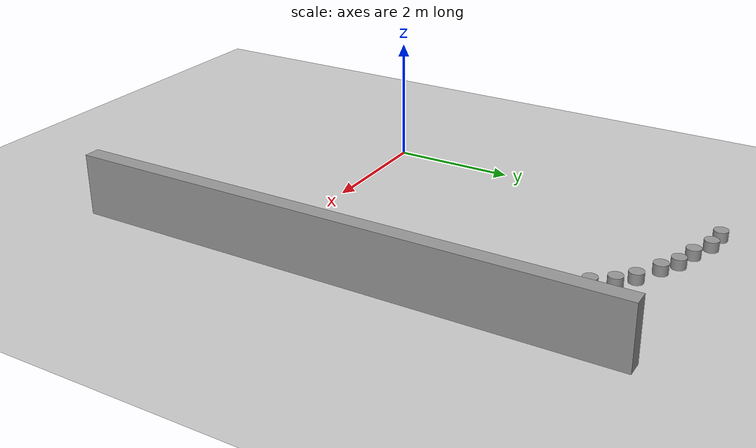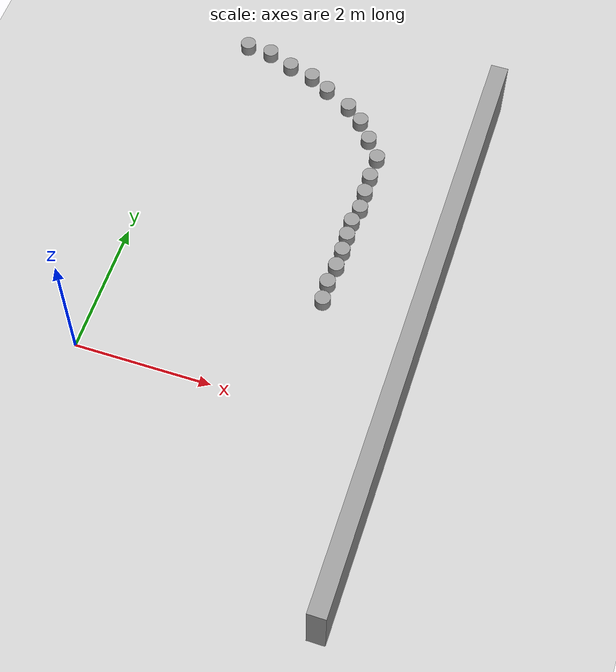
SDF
<sdf version="1.6">
 <world name="default">
  <model name="ground_plane">
   <static>1</static>
   <link name="link">
    <collision name="collision">
     <geometry><plane><normal>0 0 1</normal><size>100 100</size></plane></geometry>
     <surface>
      <contact><collide_bitmask>65535</collide_bitmask></contact>
      <friction><ode><mu>100</mu><mu2>50</mu2></ode></friction>
     </surface>
    </collision>
    <visual name="visual">
     <cast_shadows>0</cast_shadows>
     <geometry><plane><normal>0 0 1</normal><size>100 100</size></plane></geometry>
     <material>
      <script><uri>file://media/materials/scripts/gazebo.material</uri><name>Gazebo/Grey</name></script>
     </material>
    </visual>
   </link>
  </model>
  <model name="wall_1">
   <static>1</static>
   <pose>4.47107 1.4204 0.5 0 -0 0</pose>
   <link name="link">
    <inertial>
     <mass>1</mass>
     <inertia>
      <ixx>0.166667</ixx>
      <ixy>0</ixy>
      <ixz>0</ixz>
      <iyy>0.166667</iyy>
      <iyz>0</iyz>
      <izz>0.166667</izz>
     </inertia>
    </inertial>
    <collision name="collision"><geometry><box><size>0.255907 8.84306 1</size></box></geometry></collision>
    <visual name="visual">
     <geometry><box><size>0.255907 8.84306 1</size></box></geometry>
     <material>
      <script><name>Gazebo/Grey</name><uri>file://media/materials/scripts/gazebo.material</uri></script>
     </material>
    </visual>
   </link>
  </model>
  <model name="pillar_clone_16">
   <link name="link_0">
    <inertial>
     <mass>0.0172437</mass>
     <inertia>
      <ixx>0.000207925</ixx>
      <ixy>0</ixy>
      <ixz>0</ixz>
      <iyy>0.000207925</iyy>
      <iyz>0</iyz>
      <izz>0.000114861</izz>
     </inertia>
    </inertial>
    <pose>2e-06 -0 0 0 -0 0</pose>
    <visual name="visual">
     <geometry><cylinder><radius>0.115422</radius><length>0.32362</length></cylinder></geometry>
     <material>
      <lighting>1</lighting>
      <script><uri>file://media/materials/scripts/gazebo.material</uri><name>Gazebo/Grey</name></script>
      <shader type="vertex"><normal_map>__default__</normal_map></shader>
     </material>
    </visual>
    <collision name="collision">
     <geometry><cylinder><radius>0.115422</radius><length>0.32362</length></cylinder></geometry>
     <surface>
      <friction>
       <ode><mu>1</mu><mu2>1</mu2><fdir1>0 0 0</fdir1><slip1>0</slip1><slip2>0</slip2></ode>
       <torsional>
        <coefficient>1</coefficient>
        <patch_radius>0</patch_radius>
        <surface_radius>0</surface_radius>
        <use_patch_radius>1</use_patch_radius>
        <ode><slip>0</slip></ode>
       </torsional>
      </friction>
      <bounce><restitution_coefficient>0</restitution_coefficient><threshold>1e+06</threshold></bounce>
      <contact>
       <collide_without_contact>0</collide_without_contact>
       <collide_without_contact_bitmask>1</collide_without_contact_bitmask>
       <collide_bitmask>1</collide_bitmask>
       <ode>
        <soft_cfm>0</soft_cfm>
        <soft_erp>0.2</soft_erp>
        <kp>1e+13</kp>
        <kd>1</kd>
        <max_vel>0.01</max_vel>
        <min_depth>0</min_depth>
       </ode>
       <bullet>
        <split_impulse>1</split_impulse>
        <split_impulse_penetration_threshold>-0.01</split_impulse_penetration_threshold>
        <soft_cfm>0</soft_cfm>
        <soft_erp>0.2</soft_erp>
        <kp>1e+13</kp>
        <kd>1</kd>
       </bullet>
      </contact>
     </surface>
    </collision>
   </link>
   <static>1</static>
   <pose>3.07065 3.97139 0 0 -0 0</pose>
  </model>
  <model name="pillar_clone_17">
   <link name="link_0">
    <inertial>
     <mass>0.0172437</mass>
     <inertia>
      <ixx>0.000207925</ixx>
      <ixy>0</ixy>
      <ixz>0</ixz>
      <iyy>0.000207925</iyy>
      <iyz>0</iyz>
      <izz>0.000114861</izz>
     </inertia>
    </inertial>
    <pose>2e-06 -0 0 0 -0 0</pose>
    <visual name="visual">
     <geometry><cylinder><radius>0.115422</radius><length>0.32362</length></cylinder></geometry>
     <material>
      <lighting>1</lighting>
      <script><uri>file://media/materials/scripts/gazebo.material</uri><name>Gazebo/Grey</name></script>
      <shader type="vertex"><normal_map>__default__</normal_map></shader>
     </material>
    </visual>
    <collision name="collision">
     <geometry><cylinder><radius>0.115422</radius><length>0.32362</length></cylinder></geometry>
     <surface>
      <friction>
       <ode><mu>1</mu><mu2>1</mu2><fdir1>0 0 0</fdir1><slip1>0</slip1><slip2>0</slip2></ode>
       <torsional>
        <coefficient>1</coefficient>
        <patch_radius>0</patch_radius>
        <surface_radius>0</surface_radius>
        <use_patch_radius>1</use_patch_radius>
        <ode><slip>0</slip></ode>
       </torsional>
      </friction>
      <bounce><restitution_coefficient>0</restitution_coefficient><threshold>1e+06</threshold></bounce>
      <contact>
       <collide_without_contact>0</collide_without_contact>
       <collide_without_contact_bitmask>1</collide_without_contact_bitmask>
       <collide_bitmask>1</collide_bitmask>
       <ode>
        <soft_cfm>0</soft_cfm>
        <soft_erp>0.2</soft_erp>
        <kp>1e+13</kp>
        <kd>1</kd>
        <max_vel>0.01</max_vel>
        <min_depth>0</min_depth>
       </ode>
       <bullet>
        <split_impulse>1</split_impulse>
        <split_impulse_penetration_threshold>-0.01</split_impulse_penetration_threshold>
        <soft_cfm>0</soft_cfm>
        <soft_erp>0.2</soft_erp>
        <kp>1e+13</kp>
        <kd>1</kd>
       </bullet>
      </contact>
     </surface>
    </collision>
   </link>
   <static>1</static>
   <pose>3.08112 3.67254 0 0 -0 0</pose>
  </model>
  <model name="pillar_clone_18">
   <link name="link_0">
    <inertial>
     <mass>0.0172437</mass>
     <inertia>
      <ixx>0.000207925</ixx>
      <ixy>0</ixy>
      <ixz>0</ixz>
      <iyy>0.000207925</iyy>
      <iyz>0</iyz>
      <izz>0.000114861</izz>
     </inertia>
    </inertial>
    <pose>2e-06 -0 0 0 -0 0</pose>
    <visual name="visual">
     <geometry><cylinder><radius>0.115422</radius><length>0.32362</length></cylinder></geometry>
     <material>
      <lighting>1</lighting>
      <script><uri>file://media/materials/scripts/gazebo.material</uri><name>Gazebo/Grey</name></script>
      <shader type="vertex"><normal_map>__default__</normal_map></shader>
     </material>
    </visual>
    <collision name="collision">
     <geometry><cylinder><radius>0.115422</radius><length>0.32362</length></cylinder></geometry>
     <surface>
      <friction>
       <ode><mu>1</mu><mu2>1</mu2><fdir1>0 0 0</fdir1><slip1>0</slip1><slip2>0</slip2></ode>
       <torsional>
        <coefficient>1</coefficient>
        <patch_radius>0</patch_radius>
        <surface_radius>0</surface_radius>
        <use_patch_radius>1</use_patch_radius>
        <ode><slip>0</slip></ode>
       </torsional>
      </friction>
      <bounce><restitution_coefficient>0</restitution_coefficient><threshold>1e+06</threshold></bounce>
      <contact>
       <collide_without_contact>0</collide_without_contact>
       <collide_without_contact_bitmask>1</collide_without_contact_bitmask>
       <collide_bitmask>1</collide_bitmask>
       <ode>
        <soft_cfm>0</soft_cfm>
        <soft_erp>0.2</soft_erp>
        <kp>1e+13</kp>
        <kd>1</kd>
        <max_vel>0.01</max_vel>
        <min_depth>0</min_depth>
       </ode>
       <bullet>
        <split_impulse>1</split_impulse>
        <split_impulse_penetration_threshold>-0.01</split_impulse_penetration_threshold>
        <soft_cfm>0</soft_cfm>
        <soft_erp>0.2</soft_erp>
        <kp>1e+13</kp>
        <kd>1</kd>
       </bullet>
      </contact>
     </surface>
    </collision>
   </link>
   <static>1</static>
   <pose>3.09722 3.38086 0 0 -0 0</pose>
  </model>
  <model name="pillar_clone_19">
   <link name="link_0">
    <inertial>
     <mass>0.0172437</mass>
     <inertia>
      <ixx>0.000207925</ixx>
      <ixy>0</ixy>
      <ixz>0</ixz>
      <iyy>0.000207925</iyy>
      <iyz>0</iyz>
      <izz>0.000114861</izz>
     </inertia>
    </inertial>
    <pose>2e-06 -0 0 0 -0 0</pose>
    <visual name="visual">
     <geometry><cylinder><radius>0.115422</radius><length>0.32362</length></cylinder></geometry>
     <material>
      <lighting>1</lighting>
      <script><uri>file://media/materials/scripts/gazebo.material</uri><name>Gazebo/Grey</name></script>
      <shader type="vertex"><normal_map>__default__</normal_map></shader>
     </material>
    </visual>
    <collision name="collision">
     <geometry><cylinder><radius>0.115422</radius><length>0.32362</length></cylinder></geometry>
     <surface>
      <friction>
       <ode><mu>1</mu><mu2>1</mu2><fdir1>0 0 0</fdir1><slip1>0</slip1><slip2>0</slip2></ode>
       <torsional>
        <coefficient>1</coefficient>
        <patch_radius>0</patch_radius>
        <surface_radius>0</surface_radius>
        <use_patch_radius>1</use_patch_radius>
        <ode><slip>0</slip></ode>
       </torsional>
      </friction>
      <bounce><restitution_coefficient>0</restitution_coefficient><threshold>1e+06</threshold></bounce>
      <contact>
       <collide_without_contact>0</collide_without_contact>
       <collide_without_contact_bitmask>1</collide_without_contact_bitmask>
       <collide_bitmask>1</collide_bitmask>
       <ode>
        <soft_cfm>0</soft_cfm>
        <soft_erp>0.2</soft_erp>
        <kp>1e+13</kp>
        <kd>1</kd>
        <max_vel>0.01</max_vel>
        <min_depth>0</min_depth>
       </ode>
       <bullet>
        <split_impulse>1</split_impulse>
        <split_impulse_penetration_threshold>-0.01</split_impulse_penetration_threshold>
        <soft_cfm>0</soft_cfm>
        <soft_erp>0.2</soft_erp>
        <kp>1e+13</kp>
        <kd>1</kd>
       </bullet>
      </contact>
     </surface>
    </collision>
   </link>
   <static>1</static>
   <pose>3.05002 3.1194 0 0 -0 0</pose>
  </model>
  <model name="pillar_clone_20">
   <link name="link_0">
    <inertial>
     <mass>0.0172437</mass>
     <inertia>
      <ixx>0.000207925</ixx>
      <ixy>0</ixy>
      <ixz>0</ixz>
      <iyy>0.000207925</iyy>
      <iyz>0</iyz>
      <izz>0.000114861</izz>
     </inertia>
    </inertial>
    <pose>2e-06 -0 0 0 -0 0</pose>
    <visual name="visual">
     <geometry><cylinder><radius>0.115422</radius><length>0.32362</length></cylinder></geometry>
     <material>
      <lighting>1</lighting>
      <script><uri>file://media/materials/scripts/gazebo.material</uri><name>Gazebo/Grey</name></script>
      <shader type="vertex"><normal_map>__default__</normal_map></shader>
     </material>
    </visual>
    <collision name="collision">
     <geometry><cylinder><radius>0.115422</radius><length>0.32362</length></cylinder></geometry>
     <surface>
      <friction>
       <ode><mu>1</mu><mu2>1</mu2><fdir1>0 0 0</fdir1><slip1>0</slip1><slip2>0</slip2></ode>
       <torsional>
        <coefficient>1</coefficient>
        <patch_radius>0</patch_radius>
        <surface_radius>0</surface_radius>
        <use_patch_radius>1</use_patch_radius>
        <ode><slip>0</slip></ode>
       </torsional>
      </friction>
      <bounce><restitution_coefficient>0</restitution_coefficient><threshold>1e+06</threshold></bounce>
      <contact>
       <collide_without_contact>0</collide_without_contact>
       <collide_without_contact_bitmask>1</collide_without_contact_bitmask>
       <collide_bitmask>1</collide_bitmask>
       <ode>
        <soft_cfm>0</soft_cfm>
        <soft_erp>0.2</soft_erp>
        <kp>1e+13</kp>
        <kd>1</kd>
        <max_vel>0.01</max_vel>
        <min_depth>0</min_depth>
       </ode>
       <bullet>
        <split_impulse>1</split_impulse>
        <split_impulse_penetration_threshold>-0.01</split_impulse_penetration_threshold>
        <soft_cfm>0</soft_cfm>
        <soft_erp>0.2</soft_erp>
        <kp>1e+13</kp>
        <kd>1</kd>
       </bullet>
      </contact>
     </surface>
    </collision>
   </link>
   <static>1</static>
   <pose>3.05791 2.86537 0 0 -0 0</pose>
  </model>
  <model name="pillar_clone_21">
   <link name="link_0">
    <inertial>
     <mass>0.0172437</mass>
     <inertia>
      <ixx>0.000207925</ixx>
      <ixy>0</ixy>
      <ixz>0</ixz>
      <iyy>0.000207925</iyy>
      <iyz>0</iyz>
      <izz>0.000114861</izz>
     </inertia>
    </inertial>
    <pose>2e-06 -0 0 0 -0 0</pose>
    <visual name="visual">
     <geometry><cylinder><radius>0.115422</radius><length>0.32362</length></cylinder></geometry>
     <material>
      <lighting>1</lighting>
      <script><uri>file://media/materials/scripts/gazebo.material</uri><name>Gazebo/Grey</name></script>
      <shader type="vertex"><normal_map>__default__</normal_map></shader>
     </material>
    </visual>
    <collision name="collision">
     <geometry><cylinder><radius>0.115422</radius><length>0.32362</length></cylinder></geometry>
     <surface>
      <friction>
       <ode><mu>1</mu><mu2>1</mu2><fdir1>0 0 0</fdir1><slip1>0</slip1><slip2>0</slip2></ode>
       <torsional>
        <coefficient>1</coefficient>
        <patch_radius>0</patch_radius>
        <surface_radius>0</surface_radius>
        <use_patch_radius>1</use_patch_radius>
        <ode><slip>0</slip></ode>
       </torsional>
      </friction>
      <bounce><restitution_coefficient>0</restitution_coefficient><threshold>1e+06</threshold></bounce>
      <contact>
       <collide_without_contact>0</collide_without_contact>
       <collide_without_contact_bitmask>1</collide_without_contact_bitmask>
       <collide_bitmask>1</collide_bitmask>
       <ode>
        <soft_cfm>0</soft_cfm>
        <soft_erp>0.2</soft_erp>
        <kp>1e+13</kp>
        <kd>1</kd>
        <max_vel>0.01</max_vel>
        <min_depth>0</min_depth>
       </ode>
       <bullet>
        <split_impulse>1</split_impulse>
        <split_impulse_penetration_threshold>-0.01</split_impulse_penetration_threshold>
        <soft_cfm>0</soft_cfm>
        <soft_erp>0.2</soft_erp>
        <kp>1e+13</kp>
        <kd>1</kd>
       </bullet>
      </contact>
     </surface>
    </collision>
   </link>
   <static>1</static>
   <pose>3.06979 2.59644 0 0 -0 0</pose>
  </model>
  <model name="pillar_clone_22">
   <link name="link_0">
    <inertial>
     <mass>0.0172437</mass>
     <inertia>
      <ixx>0.000207925</ixx>
      <ixy>0</ixy>
      <ixz>0</ixz>
      <iyy>0.000207925</iyy>
      <iyz>0</iyz>
      <izz>0.000114861</izz>
     </inertia>
    </inertial>
    <pose>2e-06 -0 0 0 -0 0</pose>
    <visual name="visual">
     <geometry><cylinder><radius>0.115422</radius><length>0.32362</length></cylinder></geometry>
     <material>
      <lighting>1</lighting>
      <script><uri>file://media/materials/scripts/gazebo.material</uri><name>Gazebo/Grey</name></script>
      <shader type="vertex"><normal_map>__default__</normal_map></shader>
     </material>
    </visual>
    <collision name="collision">
     <geometry><cylinder><radius>0.115422</radius><length>0.32362</length></cylinder></geometry>
     <surface>
      <friction>
       <ode><mu>1</mu><mu2>1</mu2><fdir1>0 0 0</fdir1><slip1>0</slip1><slip2>0</slip2></ode>
       <torsional>
        <coefficient>1</coefficient>
        <patch_radius>0</patch_radius>
        <surface_radius>0</surface_radius>
        <use_patch_radius>1</use_patch_radius>
        <ode><slip>0</slip></ode>
       </torsional>
      </friction>
      <bounce><restitution_coefficient>0</restitution_coefficient><threshold>1e+06</threshold></bounce>
      <contact>
       <collide_without_contact>0</collide_without_contact>
       <collide_without_contact_bitmask>1</collide_without_contact_bitmask>
       <collide_bitmask>1</collide_bitmask>
       <ode>
        <soft_cfm>0</soft_cfm>
        <soft_erp>0.2</soft_erp>
        <kp>1e+13</kp>
        <kd>1</kd>
        <max_vel>0.01</max_vel>
        <min_depth>0</min_depth>
       </ode>
       <bullet>
        <split_impulse>1</split_impulse>
        <split_impulse_penetration_threshold>-0.01</split_impulse_penetration_threshold>
        <soft_cfm>0</soft_cfm>
        <soft_erp>0.2</soft_erp>
        <kp>1e+13</kp>
        <kd>1</kd>
       </bullet>
      </contact>
     </surface>
    </collision>
   </link>
   <static>1</static>
   <pose>3.06649 2.31725 0 0 -0 0</pose>
  </model>
  <model name="pillar_clone_23">
   <link name="link_0">
    <inertial>
     <mass>0.0172437</mass>
     <inertia>
      <ixx>0.000207925</ixx>
      <ixy>0</ixy>
      <ixz>0</ixz>
      <iyy>0.000207925</iyy>
      <iyz>0</iyz>
      <izz>0.000114861</izz>
     </inertia>
    </inertial>
    <pose>2e-06 -0 0 0 -0 0</pose>
    <visual name="visual">
     <geometry><cylinder><radius>0.115422</radius><length>0.32362</length></cylinder></geometry>
     <material>
      <lighting>1</lighting>
      <script><uri>file://media/materials/scripts/gazebo.material</uri><name>Gazebo/Grey</name></script>
      <shader type="vertex"><normal_map>__default__</normal_map></shader>
     </material>
    </visual>
    <collision name="collision">
     <geometry><cylinder><radius>0.115422</radius><length>0.32362</length></cylinder></geometry>
     <surface>
      <friction>
       <ode><mu>1</mu><mu2>1</mu2><fdir1>0 0 0</fdir1><slip1>0</slip1><slip2>0</slip2></ode>
       <torsional>
        <coefficient>1</coefficient>
        <patch_radius>0</patch_radius>
        <surface_radius>0</surface_radius>
        <use_patch_radius>1</use_patch_radius>
        <ode><slip>0</slip></ode>
       </torsional>
      </friction>
      <bounce><restitution_coefficient>0</restitution_coefficient><threshold>1e+06</threshold></bounce>
      <contact>
       <collide_without_contact>0</collide_without_contact>
       <collide_without_contact_bitmask>1</collide_without_contact_bitmask>
       <collide_bitmask>1</collide_bitmask>
       <ode>
        <soft_cfm>0</soft_cfm>
        <soft_erp>0.2</soft_erp>
        <kp>1e+13</kp>
        <kd>1</kd>
        <max_vel>0.01</max_vel>
        <min_depth>0</min_depth>
       </ode>
       <bullet>
        <split_impulse>1</split_impulse>
        <split_impulse_penetration_threshold>-0.01</split_impulse_penetration_threshold>
        <soft_cfm>0</soft_cfm>
        <soft_erp>0.2</soft_erp>
        <kp>1e+13</kp>
        <kd>1</kd>
       </bullet>
      </contact>
     </surface>
    </collision>
   </link>
   <static>1</static>
   <pose>3.03205 2.01728 0 0 -0 0</pose>
  </model>
  <model name="pillar_clone_24">
   <link name="link_0">
    <inertial>
     <mass>0.0172437</mass>
     <inertia>
      <ixx>0.000207925</ixx>
      <ixy>0</ixy>
      <ixz>0</ixz>
      <iyy>0.000207925</iyy>
      <iyz>0</iyz>
      <izz>0.000114861</izz>
     </inertia>
    </inertial>
    <pose>2e-06 -0 0 0 -0 0</pose>
    <visual name="visual">
     <geometry><cylinder><radius>0.115422</radius><length>0.32362</length></cylinder></geometry>
     <material>
      <lighting>1</lighting>
      <script><uri>file://media/materials/scripts/gazebo.material</uri><name>Gazebo/Grey</name></script>
      <shader type="vertex"><normal_map>__default__</normal_map></shader>
     </material>
    </visual>
    <collision name="collision">
     <geometry><cylinder><radius>0.115422</radius><length>0.32362</length></cylinder></geometry>
     <surface>
      <friction>
       <ode><mu>1</mu><mu2>1</mu2><fdir1>0 0 0</fdir1><slip1>0</slip1><slip2>0</slip2></ode>
       <torsional>
        <coefficient>1</coefficient>
        <patch_radius>0</patch_radius>
        <surface_radius>0</surface_radius>
        <use_patch_radius>1</use_patch_radius>
        <ode><slip>0</slip></ode>
       </torsional>
      </friction>
      <bounce><restitution_coefficient>0</restitution_coefficient><threshold>1e+06</threshold></bounce>
      <contact>
       <collide_without_contact>0</collide_without_contact>
       <collide_without_contact_bitmask>1</collide_without_contact_bitmask>
       <collide_bitmask>1</collide_bitmask>
       <ode>
        <soft_cfm>0</soft_cfm>
        <soft_erp>0.2</soft_erp>
        <kp>1e+13</kp>
        <kd>1</kd>
        <max_vel>0.01</max_vel>
        <min_depth>0</min_depth>
       </ode>
       <bullet>
        <split_impulse>1</split_impulse>
        <split_impulse_penetration_threshold>-0.01</split_impulse_penetration_threshold>
        <soft_cfm>0</soft_cfm>
        <soft_erp>0.2</soft_erp>
        <kp>1e+13</kp>
        <kd>1</kd>
       </bullet>
      </contact>
     </surface>
    </collision>
   </link>
   <static>1</static>
   <pose>3.05252 1.72172 0 0 -0 0</pose>
  </model>
  <model name="pillar_clone_36_clone_4">
   <link name="link_0">
    <inertial>
     <mass>0.0172437</mass>
     <inertia>
      <ixx>0.000207925</ixx>
      <ixy>0</ixy>
      <ixz>0</ixz>
      <iyy>0.000207925</iyy>
      <iyz>0</iyz>
      <izz>0.000114861</izz>
     </inertia>
    </inertial>
    <pose>2e-06 -0 0 0 -0 0</pose>
    <visual name="visual">
     <geometry><cylinder><radius>0.115422</radius><length>0.32362</length></cylinder></geometry>
     <material>
      <lighting>1</lighting>
      <script><uri>file://media/materials/scripts/gazebo.material</uri><name>Gazebo/Grey</name></script>
      <shader type="vertex"><normal_map>__default__</normal_map></shader>
     </material>
    </visual>
    <collision name="collision">
     <geometry><cylinder><radius>0.115422</radius><length>0.32362</length></cylinder></geometry>
     <surface>
      <friction>
       <ode><mu>1</mu><mu2>1</mu2><fdir1>0 0 0</fdir1><slip1>0</slip1><slip2>0</slip2></ode>
       <torsional>
        <coefficient>1</coefficient>
        <patch_radius>0</patch_radius>
        <surface_radius>0</surface_radius>
        <use_patch_radius>1</use_patch_radius>
        <ode><slip>0</slip></ode>
       </torsional>
      </friction>
      <bounce><restitution_coefficient>0</restitution_coefficient><threshold>1e+06</threshold></bounce>
      <contact>
       <collide_without_contact>0</collide_without_contact>
       <collide_without_contact_bitmask>1</collide_without_contact_bitmask>
       <collide_bitmask>1</collide_bitmask>
       <ode>
        <soft_cfm>0</soft_cfm>
        <soft_erp>0.2</soft_erp>
        <kp>1e+13</kp>
        <kd>1</kd>
        <max_vel>0.01</max_vel>
        <min_depth>0</min_depth>
       </ode>
       <bullet>
        <split_impulse>1</split_impulse>
        <split_impulse_penetration_threshold>-0.01</split_impulse_penetration_threshold>
        <soft_cfm>0</soft_cfm>
        <soft_erp>0.2</soft_erp>
        <kp>1e+13</kp>
        <kd>1</kd>
       </bullet>
      </contact>
     </surface>
    </collision>
   </link>
   <static>1</static>
   <pose>0.525792 5.80434 0 0 -0 0</pose>
  </model>
  <model name="pillar_clone_36_clone_5">
   <link name="link_0">
    <inertial>
     <mass>0.0172437</mass>
     <inertia>
      <ixx>0.000207925</ixx>
      <ixy>0</ixy>
      <ixz>0</ixz>
      <iyy>0.000207925</iyy>
      <iyz>0</iyz>
      <izz>0.000114861</izz>
     </inertia>
    </inertial>
    <pose>2e-06 -0 0 0 -0 0</pose>
    <visual name="visual">
     <geometry><cylinder><radius>0.115422</radius><length>0.32362</length></cylinder></geometry>
     <material>
      <lighting>1</lighting>
      <script><uri>file://media/materials/scripts/gazebo.material</uri><name>Gazebo/Grey</name></script>
      <shader type="vertex"><normal_map>__default__</normal_map></shader>
     </material>
    </visual>
    <collision name="collision">
     <geometry><cylinder><radius>0.115422</radius><length>0.32362</length></cylinder></geometry>
     <surface>
      <friction>
       <ode><mu>1</mu><mu2>1</mu2><fdir1>0 0 0</fdir1><slip1>0</slip1><slip2>0</slip2></ode>
       <torsional>
        <coefficient>1</coefficient>
        <patch_radius>0</patch_radius>
        <surface_radius>0</surface_radius>
        <use_patch_radius>1</use_patch_radius>
        <ode><slip>0</slip></ode>
       </torsional>
      </friction>
      <bounce><restitution_coefficient>0</restitution_coefficient><threshold>1e+06</threshold></bounce>
      <contact>
       <collide_without_contact>0</collide_without_contact>
       <collide_without_contact_bitmask>1</collide_without_contact_bitmask>
       <collide_bitmask>1</collide_bitmask>
       <ode>
        <soft_cfm>0</soft_cfm>
        <soft_erp>0.2</soft_erp>
        <kp>1e+13</kp>
        <kd>1</kd>
        <max_vel>0.01</max_vel>
        <min_depth>0</min_depth>
       </ode>
       <bullet>
        <split_impulse>1</split_impulse>
        <split_impulse_penetration_threshold>-0.01</split_impulse_penetration_threshold>
        <soft_cfm>0</soft_cfm>
        <soft_erp>0.2</soft_erp>
        <kp>1e+13</kp>
        <kd>1</kd>
       </bullet>
      </contact>
     </surface>
    </collision>
   </link>
   <static>1</static>
   <pose>0.90822 5.77177 0 0 -0 0</pose>
  </model>
  <model name="pillar_clone_36_clone_6">
   <link name="link_0">
    <inertial>
     <mass>0.0172437</mass>
     <inertia>
      <ixx>0.000207925</ixx>
      <ixy>0</ixy>
      <ixz>0</ixz>
      <iyy>0.000207925</iyy>
      <iyz>0</iyz>
      <izz>0.000114861</izz>
     </inertia>
    </inertial>
    <pose>2e-06 -0 0 0 -0 0</pose>
    <visual name="visual">
     <geometry><cylinder><radius>0.115422</radius><length>0.32362</length></cylinder></geometry>
     <material>
      <lighting>1</lighting>
      <script><uri>file://media/materials/scripts/gazebo.material</uri><name>Gazebo/Grey</name></script>
      <shader type="vertex"><normal_map>__default__</normal_map></shader>
     </material>
    </visual>
    <collision name="collision">
     <geometry><cylinder><radius>0.115422</radius><length>0.32362</length></cylinder></geometry>
     <surface>
      <friction>
       <ode><mu>1</mu><mu2>1</mu2><fdir1>0 0 0</fdir1><slip1>0</slip1><slip2>0</slip2></ode>
       <torsional>
        <coefficient>1</coefficient>
        <patch_radius>0</patch_radius>
        <surface_radius>0</surface_radius>
        <use_patch_radius>1</use_patch_radius>
        <ode><slip>0</slip></ode>
       </torsional>
      </friction>
      <bounce><restitution_coefficient>0</restitution_coefficient><threshold>1e+06</threshold></bounce>
      <contact>
       <collide_without_contact>0</collide_without_contact>
       <collide_without_contact_bitmask>1</collide_without_contact_bitmask>
       <collide_bitmask>1</collide_bitmask>
       <ode>
        <soft_cfm>0</soft_cfm>
        <soft_erp>0.2</soft_erp>
        <kp>1e+13</kp>
        <kd>1</kd>
        <max_vel>0.01</max_vel>
        <min_depth>0</min_depth>
       </ode>
       <bullet>
        <split_impulse>1</split_impulse>
        <split_impulse_penetration_threshold>-0.01</split_impulse_penetration_threshold>
        <soft_cfm>0</soft_cfm>
        <soft_erp>0.2</soft_erp>
        <kp>1e+13</kp>
        <kd>1</kd>
       </bullet>
      </contact>
     </surface>
    </collision>
   </link>
   <static>1</static>
   <pose>1.28903 5.61596 0 0 -0 0</pose>
  </model>
  <model name="pillar_clone_36_clone_7">
   <link name="link_0">
    <inertial>
     <mass>0.0172437</mass>
     <inertia>
      <ixx>0.000207925</ixx>
      <ixy>0</ixy>
      <ixz>0</ixz>
      <iyy>0.000207925</iyy>
      <iyz>0</iyz>
      <izz>0.000114861</izz>
     </inertia>
    </inertial>
    <pose>2e-06 -0 0 0 -0 0</pose>
    <visual name="visual">
     <geometry><cylinder><radius>0.115422</radius><length>0.32362</length></cylinder></geometry>
     <material>
      <lighting>1</lighting>
      <script><uri>file://media/materials/scripts/gazebo.material</uri><name>Gazebo/Grey</name></script>
      <shader type="vertex"><normal_map>__default__</normal_map></shader>
     </material>
    </visual>
    <collision name="collision">
     <geometry><cylinder><radius>0.115422</radius><length>0.32362</length></cylinder></geometry>
     <surface>
      <friction>
       <ode><mu>1</mu><mu2>1</mu2><fdir1>0 0 0</fdir1><slip1>0</slip1><slip2>0</slip2></ode>
       <torsional>
        <coefficient>1</coefficient>
        <patch_radius>0</patch_radius>
        <surface_radius>0</surface_radius>
        <use_patch_radius>1</use_patch_radius>
        <ode><slip>0</slip></ode>
       </torsional>
      </friction>
      <bounce><restitution_coefficient>0</restitution_coefficient><threshold>1e+06</threshold></bounce>
      <contact>
       <collide_without_contact>0</collide_without_contact>
       <collide_without_contact_bitmask>1</collide_without_contact_bitmask>
       <collide_bitmask>1</collide_bitmask>
       <ode>
        <soft_cfm>0</soft_cfm>
        <soft_erp>0.2</soft_erp>
        <kp>1e+13</kp>
        <kd>1</kd>
        <max_vel>0.01</max_vel>
        <min_depth>0</min_depth>
       </ode>
       <bullet>
        <split_impulse>1</split_impulse>
        <split_impulse_penetration_threshold>-0.01</split_impulse_penetration_threshold>
        <soft_cfm>0</soft_cfm>
        <soft_erp>0.2</soft_erp>
        <kp>1e+13</kp>
        <kd>1</kd>
       </bullet>
      </contact>
     </surface>
    </collision>
   </link>
   <static>1</static>
   <pose>1.66938 5.51752 0 0 -0 0</pose>
  </model>
  <model name="pillar_clone_36_clone_8">
   <link name="link_0">
    <inertial>
     <mass>0.0172437</mass>
     <inertia>
      <ixx>0.000207925</ixx>
      <ixy>0</ixy>
      <ixz>0</ixz>
      <iyy>0.000207925</iyy>
      <iyz>0</iyz>
      <izz>0.000114861</izz>
     </inertia>
    </inertial>
    <pose>2e-06 -0 0 0 -0 0</pose>
    <visual name="visual">
     <geometry><cylinder><radius>0.115422</radius><length>0.32362</length></cylinder></geometry>
     <material>
      <lighting>1</lighting>
      <script><uri>file://media/materials/scripts/gazebo.material</uri><name>Gazebo/Grey</name></script>
      <shader type="vertex"><normal_map>__default__</normal_map></shader>
     </material>
    </visual>
    <collision name="collision">
     <geometry><cylinder><radius>0.115422</radius><length>0.32362</length></cylinder></geometry>
     <surface>
      <friction>
       <ode><mu>1</mu><mu2>1</mu2><fdir1>0 0 0</fdir1><slip1>0</slip1><slip2>0</slip2></ode>
       <torsional>
        <coefficient>1</coefficient>
        <patch_radius>0</patch_radius>
        <surface_radius>0</surface_radius>
        <use_patch_radius>1</use_patch_radius>
        <ode><slip>0</slip></ode>
       </torsional>
      </friction>
      <bounce><restitution_coefficient>0</restitution_coefficient><threshold>1e+06</threshold></bounce>
      <contact>
       <collide_without_contact>0</collide_without_contact>
       <collide_without_contact_bitmask>1</collide_without_contact_bitmask>
       <collide_bitmask>1</collide_bitmask>
       <ode>
        <soft_cfm>0</soft_cfm>
        <soft_erp>0.2</soft_erp>
        <kp>1e+13</kp>
        <kd>1</kd>
        <max_vel>0.01</max_vel>
        <min_depth>0</min_depth>
       </ode>
       <bullet>
        <split_impulse>1</split_impulse>
        <split_impulse_penetration_threshold>-0.01</split_impulse_penetration_threshold>
        <soft_cfm>0</soft_cfm>
        <soft_erp>0.2</soft_erp>
        <kp>1e+13</kp>
        <kd>1</kd>
       </bullet>
      </contact>
     </surface>
    </collision>
   </link>
   <static>1</static>
   <pose>1.96808 5.34849 0 0 -0 0</pose>
  </model>
  <model name="pillar_clone_36_clone_9">
   <link name="link_0">
    <inertial>
     <mass>0.0172437</mass>
     <inertia>
      <ixx>0.000207925</ixx>
      <ixy>0</ixy>
      <ixz>0</ixz>
      <iyy>0.000207925</iyy>
      <iyz>0</iyz>
      <izz>0.000114861</izz>
     </inertia>
    </inertial>
    <pose>2e-06 -0 0 0 -0 0</pose>
    <visual name="visual">
     <geometry><cylinder><radius>0.115422</radius><length>0.32362</length></cylinder></geometry>
     <material>
      <lighting>1</lighting>
      <script><uri>file://media/materials/scripts/gazebo.material</uri><name>Gazebo/Grey</name></script>
      <shader type="vertex"><normal_map>__default__</normal_map></shader>
     </material>
    </visual>
    <collision name="collision">
     <geometry><cylinder><radius>0.115422</radius><length>0.32362</length></cylinder></geometry>
     <surface>
      <friction>
       <ode><mu>1</mu><mu2>1</mu2><fdir1>0 0 0</fdir1><slip1>0</slip1><slip2>0</slip2></ode>
       <torsional>
        <coefficient>1</coefficient>
        <patch_radius>0</patch_radius>
        <surface_radius>0</surface_radius>
        <use_patch_radius>1</use_patch_radius>
        <ode><slip>0</slip></ode>
       </torsional>
      </friction>
      <bounce><restitution_coefficient>0</restitution_coefficient><threshold>1e+06</threshold></bounce>
      <contact>
       <collide_without_contact>0</collide_without_contact>
       <collide_without_contact_bitmask>1</collide_without_contact_bitmask>
       <collide_bitmask>1</collide_bitmask>
       <ode>
        <soft_cfm>0</soft_cfm>
        <soft_erp>0.2</soft_erp>
        <kp>1e+13</kp>
        <kd>1</kd>
        <max_vel>0.01</max_vel>
        <min_depth>0</min_depth>
       </ode>
       <bullet>
        <split_impulse>1</split_impulse>
        <split_impulse_penetration_threshold>-0.01</split_impulse_penetration_threshold>
        <soft_cfm>0</soft_cfm>
        <soft_erp>0.2</soft_erp>
        <kp>1e+13</kp>
        <kd>1</kd>
       </bullet>
      </contact>
     </surface>
    </collision>
   </link>
   <static>1</static>
   <pose>2.37694 5.13127 0 0 -0 0</pose>
  </model>
  <model name="pillar_clone_36_clone_10">
   <link name="link_0">
    <inertial>
     <mass>0.0172437</mass>
     <inertia>
      <ixx>0.000207925</ixx>
      <ixy>0</ixy>
      <ixz>0</ixz>
      <iyy>0.000207925</iyy>
      <iyz>0</iyz>
      <izz>0.000114861</izz>
     </inertia>
    </inertial>
    <pose>2e-06 -0 0 0 -0 0</pose>
    <visual name="visual">
     <geometry><cylinder><radius>0.115422</radius><length>0.32362</length></cylinder></geometry>
     <material>
      <lighting>1</lighting>
      <script><uri>file://media/materials/scripts/gazebo.material</uri><name>Gazebo/Grey</name></script>
      <shader type="vertex"><normal_map>__default__</normal_map></shader>
     </material>
    </visual>
    <collision name="collision">
     <geometry><cylinder><radius>0.115422</radius><length>0.32362</length></cylinder></geometry>
     <surface>
      <friction>
       <ode><mu>1</mu><mu2>1</mu2><fdir1>0 0 0</fdir1><slip1>0</slip1><slip2>0</slip2></ode>
       <torsional>
        <coefficient>1</coefficient>
        <patch_radius>0</patch_radius>
        <surface_radius>0</surface_radius>
        <use_patch_radius>1</use_patch_radius>
        <ode><slip>0</slip></ode>
       </torsional>
      </friction>
      <bounce><restitution_coefficient>0</restitution_coefficient><threshold>1e+06</threshold></bounce>
      <contact>
       <collide_without_contact>0</collide_without_contact>
       <collide_without_contact_bitmask>1</collide_without_contact_bitmask>
       <collide_bitmask>1</collide_bitmask>
       <ode>
        <soft_cfm>0</soft_cfm>
        <soft_erp>0.2</soft_erp>
        <kp>1e+13</kp>
        <kd>1</kd>
        <max_vel>0.01</max_vel>
        <min_depth>0</min_depth>
       </ode>
       <bullet>
        <split_impulse>1</split_impulse>
        <split_impulse_penetration_threshold>-0.01</split_impulse_penetration_threshold>
        <soft_cfm>0</soft_cfm>
        <soft_erp>0.2</soft_erp>
        <kp>1e+13</kp>
        <kd>1</kd>
       </bullet>
      </contact>
     </surface>
    </collision>
   </link>
   <static>1</static>
   <pose>2.63432 4.91939 0 0 -0 0</pose>
  </model>
  <model name="pillar_clone_36_clone_11">
   <link name="link_0">
    <inertial>
     <mass>0.0172437</mass>
     <inertia>
      <ixx>0.000207925</ixx>
      <ixy>0</ixy>
      <ixz>0</ixz>
      <iyy>0.000207925</iyy>
      <iyz>0</iyz>
      <izz>0.000114861</izz>
     </inertia>
    </inertial>
    <pose>2e-06 -0 0 0 -0 0</pose>
    <visual name="visual">
     <geometry><cylinder><radius>0.115422</radius><length>0.32362</length></cylinder></geometry>
     <material>
      <lighting>1</lighting>
      <script><uri>file://media/materials/scripts/gazebo.material</uri><name>Gazebo/Grey</name></script>
      <shader type="vertex"><normal_map>__default__</normal_map></shader>
     </material>
    </visual>
    <collision name="collision">
     <geometry><cylinder><radius>0.115422</radius><length>0.32362</length></cylinder></geometry>
     <surface>
      <friction>
       <ode><mu>1</mu><mu2>1</mu2><fdir1>0 0 0</fdir1><slip1>0</slip1><slip2>0</slip2></ode>
       <torsional>
        <coefficient>1</coefficient>
        <patch_radius>0</patch_radius>
        <surface_radius>0</surface_radius>
        <use_patch_radius>1</use_patch_radius>
        <ode><slip>0</slip></ode>
       </torsional>
      </friction>
      <bounce><restitution_coefficient>0</restitution_coefficient><threshold>1e+06</threshold></bounce>
      <contact>
       <collide_without_contact>0</collide_without_contact>
       <collide_without_contact_bitmask>1</collide_without_contact_bitmask>
       <collide_bitmask>1</collide_bitmask>
       <ode>
        <soft_cfm>0</soft_cfm>
        <soft_erp>0.2</soft_erp>
        <kp>1e+13</kp>
        <kd>1</kd>
        <max_vel>0.01</max_vel>
        <min_depth>0</min_depth>
       </ode>
       <bullet>
        <split_impulse>1</split_impulse>
        <split_impulse_penetration_threshold>-0.01</split_impulse_penetration_threshold>
        <soft_cfm>0</soft_cfm>
        <soft_erp>0.2</soft_erp>
        <kp>1e+13</kp>
        <kd>1</kd>
       </bullet>
      </contact>
     </surface>
    </collision>
   </link>
   <static>1</static>
   <pose>2.85405 4.62694 0 0 -0 0</pose>
  </model>
  <model name="pillar_clone_36_clone_12">
   <link name="link_0">
    <inertial>
     <mass>0.0172437</mass>
     <inertia>
      <ixx>0.000207925</ixx>
      <ixy>0</ixy>
      <ixz>0</ixz>
      <iyy>0.000207925</iyy>
      <iyz>0</iyz>
      <izz>0.000114861</izz>
     </inertia>
    </inertial>
    <pose>2e-06 -0 0 0 -0 0</pose>
    <visual name="visual">
     <geometry><cylinder><radius>0.115422</radius><length>0.32362</length></cylinder></geometry>
     <material>
      <lighting>1</lighting>
      <script><uri>file://media/materials/scripts/gazebo.material</uri><name>Gazebo/Grey</name></script>
      <shader type="vertex"><normal_map>__default__</normal_map></shader>
     </material>
    </visual>
    <collision name="collision">
     <geometry><cylinder><radius>0.115422</radius><length>0.32362</length></cylinder></geometry>
     <surface>
      <friction>
       <ode><mu>1</mu><mu2>1</mu2><fdir1>0 0 0</fdir1><slip1>0</slip1><slip2>0</slip2></ode>
       <torsional>
        <coefficient>1</coefficient>
        <patch_radius>0</patch_radius>
        <surface_radius>0</surface_radius>
        <use_patch_radius>1</use_patch_radius>
        <ode><slip>0</slip></ode>
       </torsional>
      </friction>
      <bounce><restitution_coefficient>0</restitution_coefficient><threshold>1e+06</threshold></bounce>
      <contact>
       <collide_without_contact>0</collide_without_contact>
       <collide_without_contact_bitmask>1</collide_without_contact_bitmask>
       <collide_bitmask>1</collide_bitmask>
       <ode>
        <soft_cfm>0</soft_cfm>
        <soft_erp>0.2</soft_erp>
        <kp>1e+13</kp>
        <kd>1</kd>
        <max_vel>0.01</max_vel>
        <min_depth>0</min_depth>
       </ode>
       <bullet>
        <split_impulse>1</split_impulse>
        <split_impulse_penetration_threshold>-0.01</split_impulse_penetration_threshold>
        <soft_cfm>0</soft_cfm>
        <soft_erp>0.2</soft_erp>
        <kp>1e+13</kp>
        <kd>1</kd>
       </bullet>
      </contact>
     </surface>
    </collision>
   </link>
   <static>1</static>
   <pose>3.07184 4.32898 0 0 -0 0</pose>
  </model>
 </world>
</sdf>
